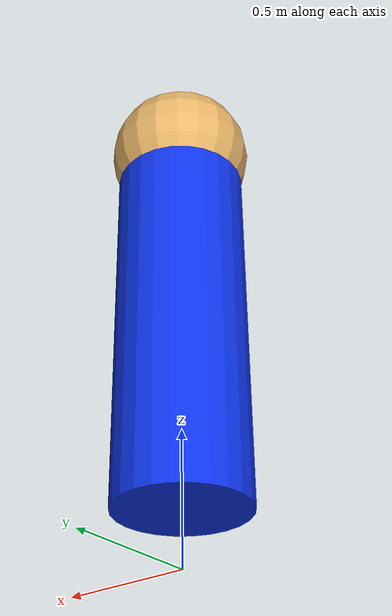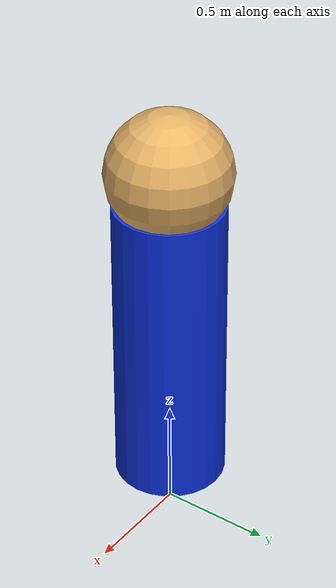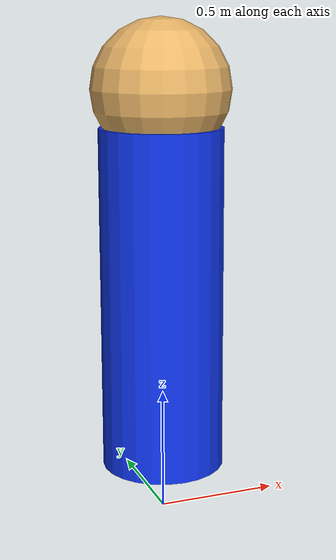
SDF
<?xml version="1.0"?><sdf version="1.8"><model name="inspection_person_marker"><static>true</static><link name="marker"><visual name="body"><pose>0 0 0.9 0 0 0</pose><geometry><cylinder><radius>0.25</radius><length>1.4</length></cylinder></geometry><material><ambient>0.05 0.2 0.9 1</ambient></material></visual><visual name="head"><pose>0 0 1.75 0 0 0</pose><geometry><sphere><radius>0.28</radius></sphere></geometry><material><ambient>0.9 0.7 0.4 1</ambient></material></visual></link></model></sdf>
